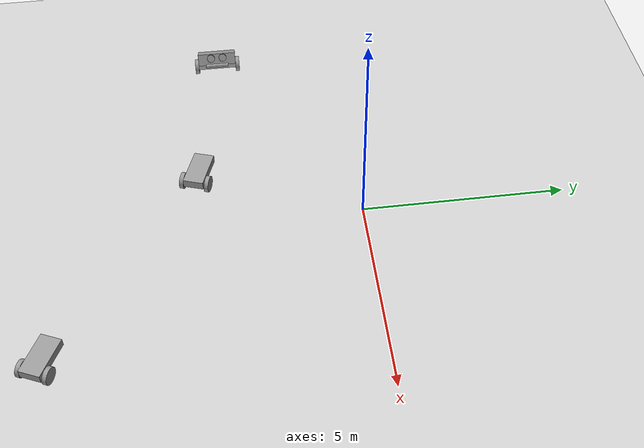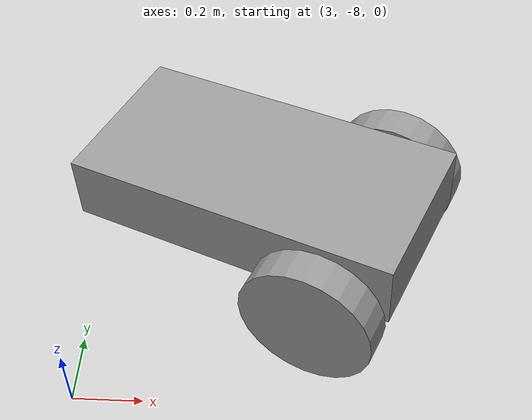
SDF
<sdf version="1.6">
 <world name="default">
  <model name="ground_plane">
   <static>1</static>
   <link name="link">
    <collision name="collision">
     <geometry><plane><normal>0 0 1</normal><size>100 100</size></plane></geometry>
     <surface><friction><ode><mu>100</mu><mu2>50</mu2></ode></friction></surface>
    </collision>
    <visual name="visual">
     <cast_shadows>0</cast_shadows>
     <geometry><plane><normal>0 0 1</normal><size>100 100</size></plane></geometry>
     <material>
      <script><uri>file://media/materials/scripts/gazebo.material</uri><name>Gazebo/Grey</name></script>
     </material>
    </visual>
   </link>
  </model>
  <model name="robot_2">
   <link name="link_0">
    <inertial>
     <mass>1</mass>
     <inertia>
      <ixx>0.166667</ixx>
      <ixy>0</ixy>
      <ixz>0</ixz>
      <iyy>0.166667</iyy>
      <iyz>0</iyz>
      <izz>0.166667</izz>
     </inertia>
    </inertial>
    <visual name="visual">
     <geometry><box><size>0.6 1 0.1</size></box></geometry>
     <material>
      <lighting>1</lighting>
      <script><uri>file://media/materials/scripts/gazebo.material</uri><name>Gazebo/Grey</name></script>
      <shader type="pixel"><normal_map>__default__</normal_map></shader>
      <ambient>0.3 0.3 0.3 1</ambient>
      <diffuse>0.7 0.7 0.7 1</diffuse>
      <specular>0.01 0.01 0.01 1</specular>
      <emissive>0 0 0 1</emissive>
     </material>
    </visual>
    <collision name="collision">
     <geometry><box><size>0.6 1 0.1</size></box></geometry>
     <surface>
      <friction>
       <ode><mu>1</mu><mu2>1</mu2><fdir1>0 0 0</fdir1><slip1>0</slip1><slip2>0</slip2></ode>
       <torsional>
        <coefficient>1</coefficient>
        <patch_radius>0</patch_radius>
        <surface_radius>0</surface_radius>
        <use_patch_radius>1</use_patch_radius>
        <ode><slip>0</slip></ode>
       </torsional>
      </friction>
      <bounce><restitution_coefficient>0</restitution_coefficient><threshold>1e+06</threshold></bounce>
      <contact>
       <collide_without_contact>0</collide_without_contact>
       <collide_without_contact_bitmask>1</collide_without_contact_bitmask>
       <collide_bitmask>1</collide_bitmask>
       <ode>
        <soft_cfm>0</soft_cfm>
        <soft_erp>0.2</soft_erp>
        <kp>1e+13</kp>
        <kd>1</kd>
        <max_vel>0.01</max_vel>
        <min_depth>0</min_depth>
       </ode>
       <bullet>
        <split_impulse>1</split_impulse>
        <split_impulse_penetration_threshold>-0.01</split_impulse_penetration_threshold>
        <soft_cfm>0</soft_cfm>
        <soft_erp>0.2</soft_erp>
        <kp>1e+13</kp>
        <kd>1</kd>
       </bullet>
      </contact>
     </surface>
    </collision>
   </link>
   <link name="link_1">
    <pose>-0 -0.550019 -0 1.5707 -0 0</pose>
    <inertial>
     <mass>1</mass>
     <inertia><ixx>0.145833</ixx><ixy>0</ixy><ixz>0</ixz><iyy>0.145833</iyy><iyz>0</iyz><izz>0.125</izz></inertia>
    </inertial>
    <visual name="visual">
     <geometry><cylinder><radius>0.2</radius><length>0.1</length></cylinder></geometry>
     <material>
      <lighting>1</lighting>
      <script><uri>file://media/materials/scripts/gazebo.material</uri><name>Gazebo/Grey</name></script>
      <shader type="pixel"><normal_map>__default__</normal_map></shader>
      <ambient>0.3 0.3 0.3 1</ambient>
      <diffuse>0.7 0.7 0.7 1</diffuse>
      <specular>0.01 0.01 0.01 1</specular>
      <emissive>0 0 0 1</emissive>
     </material>
    </visual>
    <collision name="collision">
     <geometry><cylinder><radius>0.2</radius><length>0.1</length></cylinder></geometry>
     <surface>
      <friction>
       <ode><mu>1</mu><mu2>1</mu2><fdir1>0 0 0</fdir1><slip1>0</slip1><slip2>0</slip2></ode>
       <torsional>
        <coefficient>1</coefficient>
        <patch_radius>0</patch_radius>
        <surface_radius>0</surface_radius>
        <use_patch_radius>1</use_patch_radius>
        <ode><slip>0</slip></ode>
       </torsional>
      </friction>
      <bounce><restitution_coefficient>0</restitution_coefficient><threshold>1e+06</threshold></bounce>
      <contact>
       <collide_without_contact>0</collide_without_contact>
       <collide_without_contact_bitmask>1</collide_without_contact_bitmask>
       <collide_bitmask>1</collide_bitmask>
       <ode>
        <soft_cfm>0</soft_cfm>
        <soft_erp>0.2</soft_erp>
        <kp>1e+13</kp>
        <kd>1</kd>
        <max_vel>0.01</max_vel>
        <min_depth>0</min_depth>
       </ode>
       <bullet>
        <split_impulse>1</split_impulse>
        <split_impulse_penetration_threshold>-0.01</split_impulse_penetration_threshold>
        <soft_cfm>0</soft_cfm>
        <soft_erp>0.2</soft_erp>
        <kp>1e+13</kp>
        <kd>1</kd>
       </bullet>
      </contact>
     </surface>
    </collision>
   </link>
   <link name="link_1_0">
    <pose>-2.6e-05 -0 0.200078 0 0.000173 -9.4e-05</pose>
    <inertial>
     <mass>1</mass>
     <inertia>
      <ixx>0.166667</ixx>
      <ixy>0</ixy>
      <ixz>0</ixz>
      <iyy>0.166667</iyy>
      <iyz>0</iyz>
      <izz>0.166667</izz>
     </inertia>
    </inertial>
    <visual name="visual">
     <geometry><box><size>0.6 1 0.3</size></box></geometry>
     <material>
      <lighting>1</lighting>
      <script><uri>file://media/materials/scripts/gazebo.material</uri><name>Gazebo/Grey</name></script>
      <shader type="pixel"><normal_map>__default__</normal_map></shader>
      <ambient>0.3 0.3 0.3 1</ambient>
      <diffuse>0.7 0.7 0.7 1</diffuse>
      <specular>0.01 0.01 0.01 1</specular>
      <emissive>0 0 0 1</emissive>
     </material>
    </visual>
    <collision name="collision">
     <geometry><box><size>0.6 1 0.3</size></box></geometry>
     <surface>
      <friction>
       <ode><mu>1</mu><mu2>1</mu2><fdir1>0 0 0</fdir1><slip1>0</slip1><slip2>0</slip2></ode>
       <torsional>
        <coefficient>1</coefficient>
        <patch_radius>0</patch_radius>
        <surface_radius>0</surface_radius>
        <use_patch_radius>1</use_patch_radius>
        <ode><slip>0</slip></ode>
       </torsional>
      </friction>
      <bounce><restitution_coefficient>0</restitution_coefficient><threshold>1e+06</threshold></bounce>
      <contact>
       <collide_without_contact>0</collide_without_contact>
       <collide_without_contact_bitmask>1</collide_without_contact_bitmask>
       <collide_bitmask>1</collide_bitmask>
       <ode>
        <soft_cfm>0</soft_cfm>
        <soft_erp>0.2</soft_erp>
        <kp>1e+13</kp>
        <kd>1</kd>
        <max_vel>0.01</max_vel>
        <min_depth>0</min_depth>
       </ode>
       <bullet>
        <split_impulse>1</split_impulse>
        <split_impulse_penetration_threshold>-0.01</split_impulse_penetration_threshold>
        <soft_cfm>0</soft_cfm>
        <soft_erp>0.2</soft_erp>
        <kp>1e+13</kp>
        <kd>1</kd>
       </bullet>
      </contact>
     </surface>
    </collision>
   </link>
   <link name="link_1_clone">
    <pose>0 0.550019 -0 1.5707 -0 0</pose>
    <inertial>
     <mass>1</mass>
     <inertia><ixx>0.145833</ixx><ixy>0</ixy><ixz>0</ixz><iyy>0.145833</iyy><iyz>0</iyz><izz>0.125</izz></inertia>
    </inertial>
    <visual name="visual">
     <geometry><cylinder><radius>0.2</radius><length>0.1</length></cylinder></geometry>
     <material>
      <lighting>1</lighting>
      <script><uri>file://media/materials/scripts/gazebo.material</uri><name>Gazebo/Grey</name></script>
      <shader type="pixel"><normal_map>__default__</normal_map></shader>
      <ambient>0.3 0.3 0.3 1</ambient>
      <diffuse>0.7 0.7 0.7 1</diffuse>
      <specular>0.01 0.01 0.01 1</specular>
      <emissive>0 0 0 1</emissive>
     </material>
    </visual>
    <collision name="collision">
     <geometry><cylinder><radius>0.2</radius><length>0.1</length></cylinder></geometry>
     <surface>
      <friction>
       <ode><mu>1</mu><mu2>1</mu2><fdir1>0 0 0</fdir1><slip1>0</slip1><slip2>0</slip2></ode>
       <torsional>
        <coefficient>1</coefficient>
        <patch_radius>0</patch_radius>
        <surface_radius>0</surface_radius>
        <use_patch_radius>1</use_patch_radius>
        <ode><slip>0</slip></ode>
       </torsional>
      </friction>
      <bounce><restitution_coefficient>0</restitution_coefficient><threshold>1e+06</threshold></bounce>
      <contact>
       <collide_without_contact>0</collide_without_contact>
       <collide_without_contact_bitmask>1</collide_without_contact_bitmask>
       <collide_bitmask>1</collide_bitmask>
       <ode>
        <soft_cfm>0</soft_cfm>
        <soft_erp>0.2</soft_erp>
        <kp>1e+13</kp>
        <kd>1</kd>
        <max_vel>0.01</max_vel>
        <min_depth>0</min_depth>
       </ode>
       <bullet>
        <split_impulse>1</split_impulse>
        <split_impulse_penetration_threshold>-0.01</split_impulse_penetration_threshold>
        <soft_cfm>0</soft_cfm>
        <soft_erp>0.2</soft_erp>
        <kp>1e+13</kp>
        <kd>1</kd>
       </bullet>
      </contact>
     </surface>
    </collision>
   </link>
   <link name="link_6_clone">
    <pose>0.342887 0.163126 0.243557 1.5707 3e-06 1.5707</pose>
    <inertial>
     <mass>1e-05</mass>
     <inertia><ixx>0.145833</ixx><ixy>0</ixy><ixz>0</ixz><iyy>0.145833</iyy><iyz>0</iyz><izz>0.125</izz></inertia>
    </inertial>
    <visual name="visual">
     <geometry><cylinder><radius>0.1</radius><length>0.1</length></cylinder></geometry>
     <material>
      <lighting>1</lighting>
      <script><uri>file://media/materials/scripts/gazebo.material</uri><name>Gazebo/Grey</name></script>
      <shader type="pixel"><normal_map>__default__</normal_map></shader>
      <ambient>0.3 0.3 0.3 1</ambient>
      <diffuse>0.7 0.7 0.7 1</diffuse>
      <specular>0.01 0.01 0.01 1</specular>
      <emissive>0 0 0 1</emissive>
     </material>
    </visual>
    <collision name="collision">
     <geometry><cylinder><radius>0.1</radius><length>0.1</length></cylinder></geometry>
     <surface>
      <friction>
       <ode><mu>1</mu><mu2>1</mu2><fdir1>0 0 0</fdir1><slip1>0</slip1><slip2>0</slip2></ode>
       <torsional>
        <coefficient>1</coefficient>
        <patch_radius>0</patch_radius>
        <surface_radius>0</surface_radius>
        <use_patch_radius>1</use_patch_radius>
        <ode><slip>0</slip></ode>
       </torsional>
      </friction>
      <bounce><restitution_coefficient>0</restitution_coefficient><threshold>1e+06</threshold></bounce>
      <contact>
       <collide_without_contact>0</collide_without_contact>
       <collide_without_contact_bitmask>1</collide_without_contact_bitmask>
       <collide_bitmask>1</collide_bitmask>
       <ode>
        <soft_cfm>0</soft_cfm>
        <soft_erp>0.2</soft_erp>
        <kp>1e+13</kp>
        <kd>1</kd>
        <max_vel>0.01</max_vel>
        <min_depth>0</min_depth>
       </ode>
       <bullet>
        <split_impulse>1</split_impulse>
        <split_impulse_penetration_threshold>-0.01</split_impulse_penetration_threshold>
        <soft_cfm>0</soft_cfm>
        <soft_erp>0.2</soft_erp>
        <kp>1e+13</kp>
        <kd>1</kd>
       </bullet>
      </contact>
     </surface>
    </collision>
   </link>
   <link name="link_6_clone_clone">
    <pose>0.339801 -0.152965 0.239143 1.5707 1e-06 1.5707</pose>
    <inertial>
     <mass>1e-05</mass>
     <inertia><ixx>0.145833</ixx><ixy>0</ixy><ixz>0</ixz><iyy>0.145833</iyy><iyz>0</iyz><izz>0.125</izz></inertia>
    </inertial>
    <visual name="visual">
     <geometry><cylinder><radius>0.1</radius><length>0.1</length></cylinder></geometry>
     <material>
      <lighting>1</lighting>
      <script><uri>file://media/materials/scripts/gazebo.material</uri><name>Gazebo/Grey</name></script>
      <shader type="pixel"><normal_map>__default__</normal_map></shader>
      <ambient>0.3 0.3 0.3 1</ambient>
      <diffuse>0.7 0.7 0.7 1</diffuse>
      <specular>0.01 0.01 0.01 1</specular>
      <emissive>0 0 0 1</emissive>
     </material>
    </visual>
    <collision name="collision">
     <geometry><cylinder><radius>0.1</radius><length>0.1</length></cylinder></geometry>
     <surface>
      <friction>
       <ode><mu>1</mu><mu2>1</mu2><fdir1>0 0 0</fdir1><slip1>0</slip1><slip2>0</slip2></ode>
       <torsional>
        <coefficient>1</coefficient>
        <patch_radius>0</patch_radius>
        <surface_radius>0</surface_radius>
        <use_patch_radius>1</use_patch_radius>
        <ode><slip>0</slip></ode>
       </torsional>
      </friction>
      <bounce><restitution_coefficient>0</restitution_coefficient><threshold>1e+06</threshold></bounce>
      <contact>
       <collide_without_contact>0</collide_without_contact>
       <collide_without_contact_bitmask>1</collide_without_contact_bitmask>
       <collide_bitmask>1</collide_bitmask>
       <ode>
        <soft_cfm>0</soft_cfm>
        <soft_erp>0.2</soft_erp>
        <kp>1e+13</kp>
        <kd>1</kd>
        <max_vel>0.01</max_vel>
        <min_depth>0</min_depth>
       </ode>
       <bullet>
        <split_impulse>1</split_impulse>
        <split_impulse_penetration_threshold>-0.01</split_impulse_penetration_threshold>
        <soft_cfm>0</soft_cfm>
        <soft_erp>0.2</soft_erp>
        <kp>1e+13</kp>
        <kd>1</kd>
       </bullet>
      </contact>
     </surface>
    </collision>
   </link>
   <link name="link_7">
    <pose>0.351071 -5.4e-05 0.039446 1.5707 -0 0</pose>
    <inertial>
     <mass>1e-06</mass>
     <inertia><ixx>0.145833</ixx><ixy>0</ixy><ixz>0</ixz><iyy>0.145833</iyy><iyz>0</iyz><izz>0.125</izz></inertia>
    </inertial>
    <visual name="visual">
     <geometry><cylinder><radius>0.05</radius><length>0.6</length></cylinder></geometry>
     <material>
      <lighting>1</lighting>
      <script><uri>file://media/materials/scripts/gazebo.material</uri><name>Gazebo/Grey</name></script>
      <shader type="pixel"><normal_map>__default__</normal_map></shader>
      <ambient>0.3 0.3 0.3 1</ambient>
      <diffuse>0.7 0.7 0.7 1</diffuse>
      <specular>0.01 0.01 0.01 1</specular>
      <emissive>0 0 0 1</emissive>
     </material>
    </visual>
    <collision name="collision">
     <geometry><cylinder><radius>0.05</radius><length>0.6</length></cylinder></geometry>
     <surface>
      <friction>
       <ode><mu>1</mu><mu2>1</mu2><fdir1>0 0 0</fdir1><slip1>0</slip1><slip2>0</slip2></ode>
       <torsional>
        <coefficient>1</coefficient>
        <patch_radius>0</patch_radius>
        <surface_radius>0</surface_radius>
        <use_patch_radius>1</use_patch_radius>
        <ode><slip>0</slip></ode>
       </torsional>
      </friction>
      <bounce><restitution_coefficient>0</restitution_coefficient><threshold>1e+06</threshold></bounce>
      <contact>
       <collide_without_contact>0</collide_without_contact>
       <collide_without_contact_bitmask>1</collide_without_contact_bitmask>
       <collide_bitmask>1</collide_bitmask>
       <ode>
        <soft_cfm>0</soft_cfm>
        <soft_erp>0.2</soft_erp>
        <kp>1e+13</kp>
        <kd>1</kd>
        <max_vel>0.01</max_vel>
        <min_depth>0</min_depth>
       </ode>
       <bullet>
        <split_impulse>1</split_impulse>
        <split_impulse_penetration_threshold>-0.01</split_impulse_penetration_threshold>
        <soft_cfm>0</soft_cfm>
        <soft_erp>0.2</soft_erp>
        <kp>1e+13</kp>
        <kd>1</kd>
       </bullet>
      </contact>
     </surface>
    </collision>
   </link>
   <joint name="link_0_JOINT_0" type="revolute">
    <parent>link_0</parent>
    <child>link_1_clone</child>
    <axis>
     <xyz>0 0 1</xyz>
     <use_parent_model_frame>0</use_parent_model_frame>
     <limit>
      <lower>-1.79769e+308</lower>
      <upper>1.79769e+308</upper>
      <effort>-1</effort>
      <velocity>-1</velocity>
     </limit>
     <dynamics>
      <spring_reference>0</spring_reference>
      <spring_stiffness>0</spring_stiffness>
      <damping>0</damping>
      <friction>0</friction>
     </dynamics>
    </axis>
    <physics>
     <ode><limit><cfm>0</cfm><erp>0.2</erp></limit><suspension><cfm>0</cfm><erp>0.2</erp></suspension></ode>
    </physics>
   </joint>
   <joint name="link_0_JOINT_1" type="revolute">
    <parent>link_0</parent>
    <child>link_1</child>
    <axis>
     <xyz>0 0 1</xyz>
     <use_parent_model_frame>0</use_parent_model_frame>
     <limit>
      <lower>-1.79769e+308</lower>
      <upper>1.79769e+308</upper>
      <effort>-1</effort>
      <velocity>-1</velocity>
     </limit>
     <dynamics>
      <spring_reference>0</spring_reference>
      <spring_stiffness>0</spring_stiffness>
      <damping>0</damping>
      <friction>0</friction>
     </dynamics>
    </axis>
    <physics>
     <ode><limit><cfm>0</cfm><erp>0.2</erp></limit><suspension><cfm>0</cfm><erp>0.2</erp></suspension></ode>
    </physics>
   </joint>
   <joint name="link_0_JOINT_3" type="fixed">
    <parent>link_0</parent>
    <child>link_1_0</child>
    <physics>
     <ode><limit><cfm>0</cfm><erp>0.2</erp></limit><suspension><cfm>0</cfm><erp>0.2</erp></suspension></ode>
    </physics>
   </joint>
   <joint name="link_1_0_JOINT_7" type="fixed">
    <parent>link_1_0</parent>
    <child>link_6_clone_clone</child>
    <physics>
     <ode><limit><cfm>0</cfm><erp>0.2</erp></limit><suspension><cfm>0</cfm><erp>0.2</erp></suspension></ode>
    </physics>
   </joint>
   <joint name="link_1_0_JOINT_8" type="fixed">
    <parent>link_1_0</parent>
    <child>link_6_clone</child>
    <physics>
     <ode><limit><cfm>0</cfm><erp>0.2</erp></limit><suspension><cfm>0</cfm><erp>0.2</erp></suspension></ode>
    </physics>
   </joint>
   <joint name="link_1_0_JOINT_9" type="fixed">
    <parent>link_1_0</parent>
    <child>link_7</child>
    <physics>
     <ode><limit><cfm>0</cfm><erp>0.2</erp></limit><suspension><cfm>0</cfm><erp>0.2</erp></suspension></ode>
    </physics>
   </joint>
   <static>0</static>
   <pose>-5.62373 -3.23476 0.200004 0 -0.552491 -0.004379</pose>
  </model>
  <model name="robot_1">
   <link name="link_0">
    <pose>0 0.015 0.1 0 -0 0</pose>
    <inertial>
     <mass>1</mass>
     <inertia>
      <ixx>0.166667</ixx>
      <ixy>0</ixy>
      <ixz>0</ixz>
      <iyy>0.166667</iyy>
      <iyz>0</iyz>
      <izz>0.166667</izz>
     </inertia>
    </inertial>
    <visual name="visual">
     <geometry><box><size>1 0.5 0.2</size></box></geometry>
     <material>
      <lighting>1</lighting>
      <script><uri>file://media/materials/scripts/gazebo.material</uri><name>Gazebo/Grey</name></script>
      <shader type="pixel"><normal_map>__default__</normal_map></shader>
      <ambient>0.3 0.3 0.3 1</ambient>
      <diffuse>0.7 0.7 0.7 1</diffuse>
      <specular>0.01 0.01 0.01 1</specular>
      <emissive>0 0 0 1</emissive>
     </material>
    </visual>
    <collision name="collision">
     <geometry><box><size>1 0.5 0.2</size></box></geometry>
     <surface>
      <friction>
       <ode><mu>1</mu><mu2>1</mu2><fdir1>0 0 0</fdir1><slip1>0</slip1><slip2>0</slip2></ode>
       <torsional>
        <coefficient>1</coefficient>
        <patch_radius>0</patch_radius>
        <surface_radius>0</surface_radius>
        <use_patch_radius>1</use_patch_radius>
        <ode><slip>0</slip></ode>
       </torsional>
      </friction>
      <bounce><restitution_coefficient>0</restitution_coefficient><threshold>1e+06</threshold></bounce>
      <contact>
       <collide_without_contact>0</collide_without_contact>
       <collide_without_contact_bitmask>1</collide_without_contact_bitmask>
       <collide_bitmask>1</collide_bitmask>
       <ode>
        <soft_cfm>0</soft_cfm>
        <soft_erp>0.2</soft_erp>
        <kp>1e+13</kp>
        <kd>1</kd>
        <max_vel>0.01</max_vel>
        <min_depth>0</min_depth>
       </ode>
       <bullet>
        <split_impulse>1</split_impulse>
        <split_impulse_penetration_threshold>-0.01</split_impulse_penetration_threshold>
        <soft_cfm>0</soft_cfm>
        <soft_erp>0.2</soft_erp>
        <kp>1e+13</kp>
        <kd>1</kd>
       </bullet>
      </contact>
     </surface>
    </collision>
   </link>
   <link name="link_0_0">
    <pose>-0.303762 0.015004 -0.03228 -6e-06 0.013869 -1.7e-05</pose>
    <inertial>
     <mass>1</mass>
     <inertia><ixx>0.1</ixx><ixy>0</ixy><ixz>0</ixz><iyy>0.1</iyy><iyz>0</iyz><izz>0.1</izz></inertia>
    </inertial>
    <visual name="visual">
     <geometry><sphere><radius>0.15</radius></sphere></geometry>
     <material>
      <lighting>1</lighting>
      <script><uri>file://media/materials/scripts/gazebo.material</uri><name>Gazebo/Grey</name></script>
      <shader type="pixel"><normal_map>__default__</normal_map></shader>
      <ambient>0.3 0.3 0.3 1</ambient>
      <diffuse>0.7 0.7 0.7 1</diffuse>
      <specular>0.01 0.01 0.01 1</specular>
      <emissive>0 0 0 1</emissive>
     </material>
    </visual>
    <collision name="collision">
     <geometry><sphere><radius>0.15</radius></sphere></geometry>
     <surface>
      <friction>
       <ode><mu>1</mu><mu2>1</mu2><fdir1>0 0 0</fdir1><slip1>0</slip1><slip2>0</slip2></ode>
       <torsional>
        <coefficient>1</coefficient>
        <patch_radius>0</patch_radius>
        <surface_radius>0</surface_radius>
        <use_patch_radius>1</use_patch_radius>
        <ode><slip>0</slip></ode>
       </torsional>
      </friction>
      <bounce><restitution_coefficient>0</restitution_coefficient><threshold>1e+06</threshold></bounce>
      <contact>
       <collide_without_contact>0</collide_without_contact>
       <collide_without_contact_bitmask>1</collide_without_contact_bitmask>
       <collide_bitmask>1</collide_bitmask>
       <ode>
        <soft_cfm>0</soft_cfm>
        <soft_erp>0.2</soft_erp>
        <kp>1e+13</kp>
        <kd>1</kd>
        <max_vel>0.01</max_vel>
        <min_depth>0</min_depth>
       </ode>
       <bullet>
        <split_impulse>1</split_impulse>
        <split_impulse_penetration_threshold>-0.01</split_impulse_penetration_threshold>
        <soft_cfm>0</soft_cfm>
        <soft_erp>0.2</soft_erp>
        <kp>1e+13</kp>
        <kd>1</kd>
       </bullet>
      </contact>
     </surface>
    </collision>
   </link>
   <link name="link_1">
    <pose>0.297167 -0.300036 -0.004123 1.5707 -0 0</pose>
    <inertial>
     <mass>1</mass>
     <inertia><ixx>0.145833</ixx><ixy>0</ixy><ixz>0</ixz><iyy>0.145833</iyy><iyz>0</iyz><izz>0.125</izz></inertia>
    </inertial>
    <visual name="visual">
     <geometry><cylinder><radius>0.2</radius><length>0.1</length></cylinder></geometry>
     <material>
      <lighting>1</lighting>
      <script><uri>file://media/materials/scripts/gazebo.material</uri><name>Gazebo/Grey</name></script>
      <shader type="pixel"><normal_map>__default__</normal_map></shader>
      <ambient>0.3 0.3 0.3 1</ambient>
      <diffuse>0.7 0.7 0.7 1</diffuse>
      <specular>0.01 0.01 0.01 1</specular>
      <emissive>0 0 0 1</emissive>
     </material>
    </visual>
    <collision name="collision">
     <geometry><cylinder><radius>0.2</radius><length>0.1</length></cylinder></geometry>
     <surface>
      <friction>
       <ode><mu>1</mu><mu2>1</mu2><fdir1>0 0 0</fdir1><slip1>0</slip1><slip2>0</slip2></ode>
       <torsional>
        <coefficient>1</coefficient>
        <patch_radius>0</patch_radius>
        <surface_radius>0</surface_radius>
        <use_patch_radius>1</use_patch_radius>
        <ode><slip>0</slip></ode>
       </torsional>
      </friction>
      <bounce><restitution_coefficient>0</restitution_coefficient><threshold>1e+06</threshold></bounce>
      <contact>
       <collide_without_contact>0</collide_without_contact>
       <collide_without_contact_bitmask>1</collide_without_contact_bitmask>
       <collide_bitmask>1</collide_bitmask>
       <ode>
        <soft_cfm>0</soft_cfm>
        <soft_erp>0.2</soft_erp>
        <kp>1e+13</kp>
        <kd>1</kd>
        <max_vel>0.01</max_vel>
        <min_depth>0</min_depth>
       </ode>
       <bullet>
        <split_impulse>1</split_impulse>
        <split_impulse_penetration_threshold>-0.01</split_impulse_penetration_threshold>
        <soft_cfm>0</soft_cfm>
        <soft_erp>0.2</soft_erp>
        <kp>1e+13</kp>
        <kd>1</kd>
       </bullet>
      </contact>
     </surface>
    </collision>
   </link>
   <link name="link_1_clone">
    <pose>0.297178 0.330449 -0.004121 1.5707 -0 0</pose>
    <inertial>
     <mass>1</mass>
     <inertia><ixx>0.145833</ixx><ixy>0</ixy><ixz>0</ixz><iyy>0.145833</iyy><iyz>0</iyz><izz>0.125</izz></inertia>
    </inertial>
    <visual name="visual">
     <geometry><cylinder><radius>0.2</radius><length>0.1</length></cylinder></geometry>
     <material>
      <lighting>1</lighting>
      <script><uri>file://media/materials/scripts/gazebo.material</uri><name>Gazebo/Grey</name></script>
      <shader type="pixel"><normal_map>__default__</normal_map></shader>
      <ambient>0.3 0.3 0.3 1</ambient>
      <diffuse>0.7 0.7 0.7 1</diffuse>
      <specular>0.01 0.01 0.01 1</specular>
      <emissive>0 0 0 1</emissive>
     </material>
    </visual>
    <collision name="collision">
     <geometry><cylinder><radius>0.2</radius><length>0.1</length></cylinder></geometry>
     <surface>
      <friction>
       <ode><mu>1</mu><mu2>1</mu2><fdir1>0 0 0</fdir1><slip1>0</slip1><slip2>0</slip2></ode>
       <torsional>
        <coefficient>1</coefficient>
        <patch_radius>0</patch_radius>
        <surface_radius>0</surface_radius>
        <use_patch_radius>1</use_patch_radius>
        <ode><slip>0</slip></ode>
       </torsional>
      </friction>
      <bounce><restitution_coefficient>0</restitution_coefficient><threshold>1e+06</threshold></bounce>
      <contact>
       <collide_without_contact>0</collide_without_contact>
       <collide_without_contact_bitmask>1</collide_without_contact_bitmask>
       <collide_bitmask>1</collide_bitmask>
       <ode>
        <soft_cfm>0</soft_cfm>
        <soft_erp>0.2</soft_erp>
        <kp>1e+13</kp>
        <kd>1</kd>
        <max_vel>0.01</max_vel>
        <min_depth>0</min_depth>
       </ode>
       <bullet>
        <split_impulse>1</split_impulse>
        <split_impulse_penetration_threshold>-0.01</split_impulse_penetration_threshold>
        <soft_cfm>0</soft_cfm>
        <soft_erp>0.2</soft_erp>
        <kp>1e+13</kp>
        <kd>1</kd>
       </bullet>
      </contact>
     </surface>
    </collision>
   </link>
   <joint name="link_0_JOINT_0" type="revolute">
    <parent>link_0</parent>
    <child>link_1</child>
    <axis>
     <xyz>0 0 1</xyz>
     <use_parent_model_frame>0</use_parent_model_frame>
     <limit>
      <lower>-1.79769e+308</lower>
      <upper>1.79769e+308</upper>
      <effort>-1</effort>
      <velocity>-1</velocity>
     </limit>
     <dynamics>
      <spring_reference>0</spring_reference>
      <spring_stiffness>0</spring_stiffness>
      <damping>0</damping>
      <friction>0</friction>
     </dynamics>
    </axis>
    <physics>
     <ode><limit><cfm>0</cfm><erp>0.2</erp></limit><suspension><cfm>0</cfm><erp>0.2</erp></suspension></ode>
    </physics>
   </joint>
   <joint name="link_0_JOINT_1" type="revolute">
    <parent>link_0</parent>
    <child>link_1_clone</child>
    <axis>
     <xyz>0 0 1</xyz>
     <use_parent_model_frame>0</use_parent_model_frame>
     <limit>
      <lower>-1.79769e+308</lower>
      <upper>1.79769e+308</upper>
      <effort>-1</effort>
      <velocity>-1</velocity>
     </limit>
     <dynamics>
      <spring_reference>0</spring_reference>
      <spring_stiffness>0</spring_stiffness>
      <damping>0</damping>
      <friction>0</friction>
     </dynamics>
    </axis>
    <physics>
     <ode><limit><cfm>0</cfm><erp>0.2</erp></limit><suspension><cfm>0</cfm><erp>0.2</erp></suspension></ode>
    </physics>
   </joint>
   <joint name="link_0_JOINT_2" type="ball">
    <parent>link_0</parent>
    <child>link_0_0</child>
    <physics>
     <ode><limit><cfm>0</cfm><erp>0.2</erp></limit><suspension><cfm>0</cfm><erp>0.2</erp></suspension></ode>
    </physics>
   </joint>
   <static>0</static>
   <pose>3.50791 -7.43422 0.193311 -4e-06 -0.036394 -0.416868</pose>
  </model>
  <model name="robot_1_0">
   <link name="link_0">
    <pose>0 0.015 0.1 0 -0 0</pose>
    <inertial>
     <mass>1</mass>
     <inertia>
      <ixx>0.166667</ixx>
      <ixy>0</ixy>
      <ixz>0</ixz>
      <iyy>0.166667</iyy>
      <iyz>0</iyz>
      <izz>0.166667</izz>
     </inertia>
    </inertial>
    <visual name="visual">
     <geometry><box><size>1 0.5 0.2</size></box></geometry>
     <material>
      <lighting>1</lighting>
      <script><uri>file://media/materials/scripts/gazebo.material</uri><name>Gazebo/Grey</name></script>
      <shader type="pixel"><normal_map>__default__</normal_map></shader>
      <ambient>0.3 0.3 0.3 1</ambient>
      <diffuse>0.7 0.7 0.7 1</diffuse>
      <specular>0.01 0.01 0.01 1</specular>
      <emissive>0 0 0 1</emissive>
     </material>
    </visual>
    <collision name="collision">
     <geometry><box><size>1 0.5 0.2</size></box></geometry>
     <surface>
      <friction>
       <ode><mu>1</mu><mu2>1</mu2><fdir1>0 0 0</fdir1><slip1>0</slip1><slip2>0</slip2></ode>
       <torsional>
        <coefficient>1</coefficient>
        <patch_radius>0</patch_radius>
        <surface_radius>0</surface_radius>
        <use_patch_radius>1</use_patch_radius>
        <ode><slip>0</slip></ode>
       </torsional>
      </friction>
      <bounce><restitution_coefficient>0</restitution_coefficient><threshold>1e+06</threshold></bounce>
      <contact>
       <collide_without_contact>0</collide_without_contact>
       <collide_without_contact_bitmask>1</collide_without_contact_bitmask>
       <collide_bitmask>1</collide_bitmask>
       <ode>
        <soft_cfm>0</soft_cfm>
        <soft_erp>0.2</soft_erp>
        <kp>1e+13</kp>
        <kd>1</kd>
        <max_vel>0.01</max_vel>
        <min_depth>0</min_depth>
       </ode>
       <bullet>
        <split_impulse>1</split_impulse>
        <split_impulse_penetration_threshold>-0.01</split_impulse_penetration_threshold>
        <soft_cfm>0</soft_cfm>
        <soft_erp>0.2</soft_erp>
        <kp>1e+13</kp>
        <kd>1</kd>
       </bullet>
      </contact>
     </surface>
    </collision>
   </link>
   <link name="link_0_0">
    <pose>-0.303762 0.015004 -0.03228 -6e-06 0.013869 -1.7e-05</pose>
    <inertial>
     <mass>1</mass>
     <inertia><ixx>0.1</ixx><ixy>0</ixy><ixz>0</ixz><iyy>0.1</iyy><iyz>0</iyz><izz>0.1</izz></inertia>
    </inertial>
    <visual name="visual">
     <geometry><sphere><radius>0.15</radius></sphere></geometry>
     <material>
      <lighting>1</lighting>
      <script><uri>file://media/materials/scripts/gazebo.material</uri><name>Gazebo/Grey</name></script>
      <shader type="pixel"><normal_map>__default__</normal_map></shader>
      <ambient>0.3 0.3 0.3 1</ambient>
      <diffuse>0.7 0.7 0.7 1</diffuse>
      <specular>0.01 0.01 0.01 1</specular>
      <emissive>0 0 0 1</emissive>
     </material>
    </visual>
    <collision name="collision">
     <geometry><sphere><radius>0.15</radius></sphere></geometry>
     <surface>
      <friction>
       <ode><mu>1</mu><mu2>1</mu2><fdir1>0 0 0</fdir1><slip1>0</slip1><slip2>0</slip2></ode>
       <torsional>
        <coefficient>1</coefficient>
        <patch_radius>0</patch_radius>
        <surface_radius>0</surface_radius>
        <use_patch_radius>1</use_patch_radius>
        <ode><slip>0</slip></ode>
       </torsional>
      </friction>
      <bounce><restitution_coefficient>0</restitution_coefficient><threshold>1e+06</threshold></bounce>
      <contact>
       <collide_without_contact>0</collide_without_contact>
       <collide_without_contact_bitmask>1</collide_without_contact_bitmask>
       <collide_bitmask>1</collide_bitmask>
       <ode>
        <soft_cfm>0</soft_cfm>
        <soft_erp>0.2</soft_erp>
        <kp>1e+13</kp>
        <kd>1</kd>
        <max_vel>0.01</max_vel>
        <min_depth>0</min_depth>
       </ode>
       <bullet>
        <split_impulse>1</split_impulse>
        <split_impulse_penetration_threshold>-0.01</split_impulse_penetration_threshold>
        <soft_cfm>0</soft_cfm>
        <soft_erp>0.2</soft_erp>
        <kp>1e+13</kp>
        <kd>1</kd>
       </bullet>
      </contact>
     </surface>
    </collision>
   </link>
   <link name="link_1">
    <pose>0.297167 -0.300036 -0.004123 1.5707 -0 0</pose>
    <inertial>
     <mass>1</mass>
     <inertia><ixx>0.145833</ixx><ixy>0</ixy><ixz>0</ixz><iyy>0.145833</iyy><iyz>0</iyz><izz>0.125</izz></inertia>
    </inertial>
    <visual name="visual">
     <geometry><cylinder><radius>0.2</radius><length>0.1</length></cylinder></geometry>
     <material>
      <lighting>1</lighting>
      <script><uri>file://media/materials/scripts/gazebo.material</uri><name>Gazebo/Grey</name></script>
      <shader type="pixel"><normal_map>__default__</normal_map></shader>
      <ambient>0.3 0.3 0.3 1</ambient>
      <diffuse>0.7 0.7 0.7 1</diffuse>
      <specular>0.01 0.01 0.01 1</specular>
      <emissive>0 0 0 1</emissive>
     </material>
    </visual>
    <collision name="collision">
     <geometry><cylinder><radius>0.2</radius><length>0.1</length></cylinder></geometry>
     <surface>
      <friction>
       <ode><mu>1</mu><mu2>1</mu2><fdir1>0 0 0</fdir1><slip1>0</slip1><slip2>0</slip2></ode>
       <torsional>
        <coefficient>1</coefficient>
        <patch_radius>0</patch_radius>
        <surface_radius>0</surface_radius>
        <use_patch_radius>1</use_patch_radius>
        <ode><slip>0</slip></ode>
       </torsional>
      </friction>
      <bounce><restitution_coefficient>0</restitution_coefficient><threshold>1e+06</threshold></bounce>
      <contact>
       <collide_without_contact>0</collide_without_contact>
       <collide_without_contact_bitmask>1</collide_without_contact_bitmask>
       <collide_bitmask>1</collide_bitmask>
       <ode>
        <soft_cfm>0</soft_cfm>
        <soft_erp>0.2</soft_erp>
        <kp>1e+13</kp>
        <kd>1</kd>
        <max_vel>0.01</max_vel>
        <min_depth>0</min_depth>
       </ode>
       <bullet>
        <split_impulse>1</split_impulse>
        <split_impulse_penetration_threshold>-0.01</split_impulse_penetration_threshold>
        <soft_cfm>0</soft_cfm>
        <soft_erp>0.2</soft_erp>
        <kp>1e+13</kp>
        <kd>1</kd>
       </bullet>
      </contact>
     </surface>
    </collision>
   </link>
   <link name="link_1_clone">
    <pose>0.297178 0.330449 -0.004121 1.5707 -0 0</pose>
    <inertial>
     <mass>1</mass>
     <inertia><ixx>0.145833</ixx><ixy>0</ixy><ixz>0</ixz><iyy>0.145833</iyy><iyz>0</iyz><izz>0.125</izz></inertia>
    </inertial>
    <visual name="visual">
     <geometry><cylinder><radius>0.2</radius><length>0.1</length></cylinder></geometry>
     <material>
      <lighting>1</lighting>
      <script><uri>file://media/materials/scripts/gazebo.material</uri><name>Gazebo/Grey</name></script>
      <shader type="pixel"><normal_map>__default__</normal_map></shader>
      <ambient>0.3 0.3 0.3 1</ambient>
      <diffuse>0.7 0.7 0.7 1</diffuse>
      <specular>0.01 0.01 0.01 1</specular>
      <emissive>0 0 0 1</emissive>
     </material>
    </visual>
    <collision name="collision">
     <geometry><cylinder><radius>0.2</radius><length>0.1</length></cylinder></geometry>
     <surface>
      <friction>
       <ode><mu>1</mu><mu2>1</mu2><fdir1>0 0 0</fdir1><slip1>0</slip1><slip2>0</slip2></ode>
       <torsional>
        <coefficient>1</coefficient>
        <patch_radius>0</patch_radius>
        <surface_radius>0</surface_radius>
        <use_patch_radius>1</use_patch_radius>
        <ode><slip>0</slip></ode>
       </torsional>
      </friction>
      <bounce><restitution_coefficient>0</restitution_coefficient><threshold>1e+06</threshold></bounce>
      <contact>
       <collide_without_contact>0</collide_without_contact>
       <collide_without_contact_bitmask>1</collide_without_contact_bitmask>
       <collide_bitmask>1</collide_bitmask>
       <ode>
        <soft_cfm>0</soft_cfm>
        <soft_erp>0.2</soft_erp>
        <kp>1e+13</kp>
        <kd>1</kd>
        <max_vel>0.01</max_vel>
        <min_depth>0</min_depth>
       </ode>
       <bullet>
        <split_impulse>1</split_impulse>
        <split_impulse_penetration_threshold>-0.01</split_impulse_penetration_threshold>
        <soft_cfm>0</soft_cfm>
        <soft_erp>0.2</soft_erp>
        <kp>1e+13</kp>
        <kd>1</kd>
       </bullet>
      </contact>
     </surface>
    </collision>
   </link>
   <joint name="link_0_JOINT_0" type="revolute">
    <parent>link_0</parent>
    <child>link_1</child>
    <axis>
     <xyz>0 0 1</xyz>
     <use_parent_model_frame>0</use_parent_model_frame>
     <limit>
      <lower>-1.79769e+308</lower>
      <upper>1.79769e+308</upper>
      <effort>-1</effort>
      <velocity>-1</velocity>
     </limit>
     <dynamics>
      <spring_reference>0</spring_reference>
      <spring_stiffness>0</spring_stiffness>
      <damping>0</damping>
      <friction>0</friction>
     </dynamics>
    </axis>
    <physics>
     <ode><limit><cfm>0</cfm><erp>0.2</erp></limit><suspension><cfm>0</cfm><erp>0.2</erp></suspension></ode>
    </physics>
   </joint>
   <joint name="link_0_JOINT_1" type="revolute">
    <parent>link_0</parent>
    <child>link_1_clone</child>
    <axis>
     <xyz>0 0 1</xyz>
     <use_parent_model_frame>0</use_parent_model_frame>
     <limit>
      <lower>-1.79769e+308</lower>
      <upper>1.79769e+308</upper>
      <effort>-1</effort>
      <velocity>-1</velocity>
     </limit>
     <dynamics>
      <spring_reference>0</spring_reference>
      <spring_stiffness>0</spring_stiffness>
      <damping>0</damping>
      <friction>0</friction>
     </dynamics>
    </axis>
    <physics>
     <ode><limit><cfm>0</cfm><erp>0.2</erp></limit><suspension><cfm>0</cfm><erp>0.2</erp></suspension></ode>
    </physics>
   </joint>
   <joint name="link_0_JOINT_2" type="ball">
    <parent>link_0</parent>
    <child>link_0_0</child>
    <physics>
     <ode><limit><cfm>0</cfm><erp>0.2</erp></limit><suspension><cfm>0</cfm><erp>0.2</erp></suspension></ode>
    </physics>
   </joint>
   <static>0</static>
   <pose>-1.52886 -3.91299 0.193311 -1e-06 -0.036393 -0.321726</pose>
  </model>
 </world>
</sdf>
